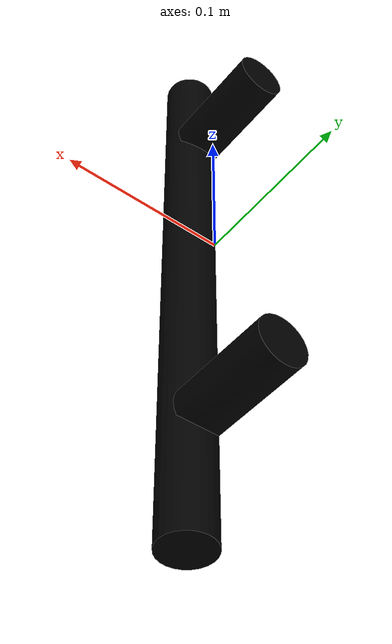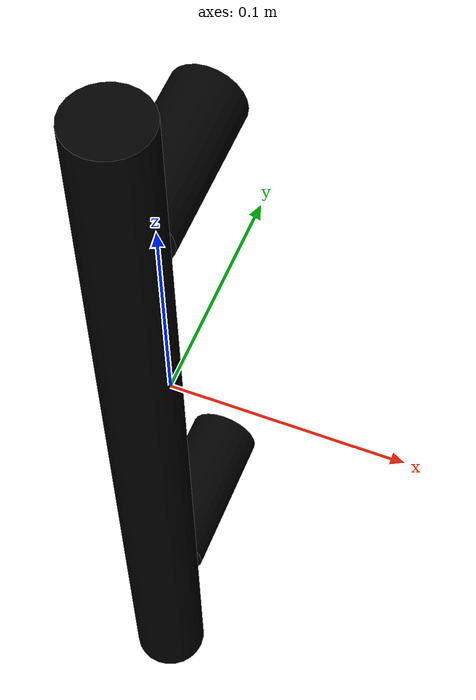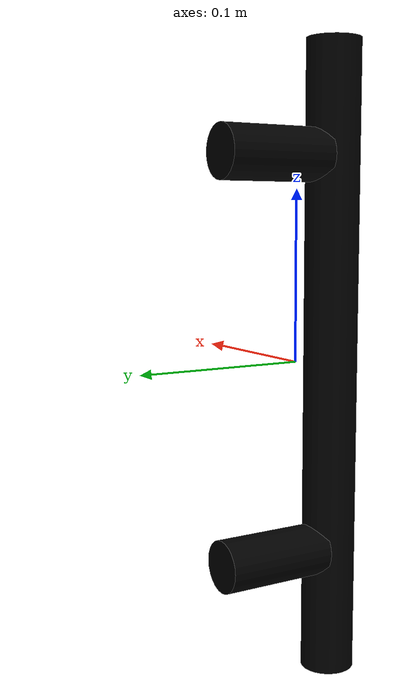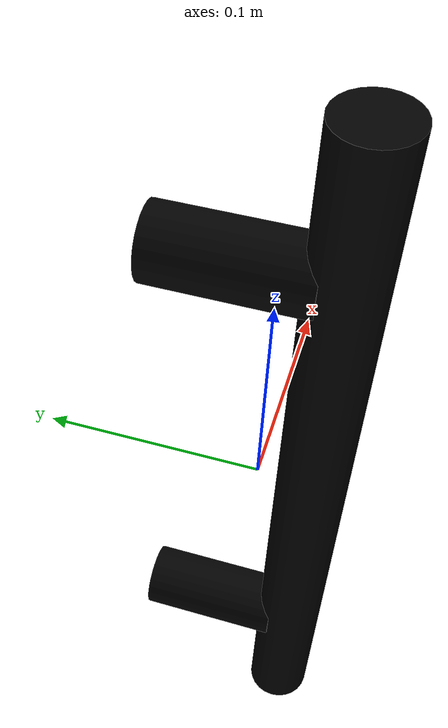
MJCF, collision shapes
<?xml version="1.0" ?>
<mujoco model="model">
    <compiler angle="radian"/>
    <asset>
        <mesh file="visuals/CabinetHandle027.obj" name="mesh"/>
        <texture file="visuals/T_BC001.png" name="tex" type="2d"/>
        <material name="mat" rgba="1 1 1 1.0" texture="tex" shininess="0.5" specular="0.8"/>
    </asset>
    <default>
        <default class="visual">
            <geom conaffinity="0" contype="0" group="1" type="mesh"/>
        </default>
        <default class="collision">
            <geom group="0" rgba="0 0 0 0"/>
        </default>
        <default class="spawn">
            <geom group="0" rgba="0 0 0 0" contype="0" conaffinity="0"/>
            <site group="0" rgba="0 0 0 0"/>
        </default>
    </default>
    <worldbody>
        <body>
            <body name="object">
                <geom mesh="mesh" type="mesh" solimp="0.998 0.998 0.001" solref="0.001 1" density="100" friction="0.95 0.3 0.1" class="visual" material="mat"/>
                <geom class="collision" type="cylinder" pos="-2.0816922187805176e-05 0.01688074693083763 0.11950366199016571" size="0.01566506177186966 0.03343303129076958" quat="0.7071067094802856 0.7071068286895752 0.0 0.0" name="handle_connector"/>
                <geom class="collision" type="cylinder" pos="9.173855682506092e-18 -0.02515600435435772 -0.003456182312220335" size="0.016121163964271545 0.1888597458600998" quat="1.0 0.0 0.0 0.0"/>
                <geom class="collision" type="cylinder" pos="-2.0816922187805176e-05 0.01688074693083763 -0.11598443239927292" size="0.01566506177186966 0.03343303129076958" quat="0.7071067094802856 0.7071068286895752 0.0 0.0"/>
            </body>
        </body>
    </worldbody>
    <actuator/>
</mujoco>
